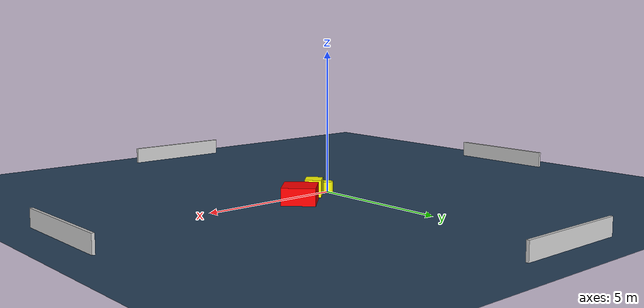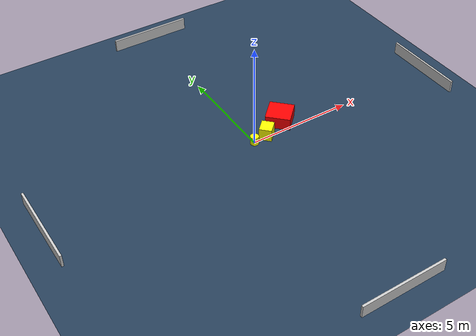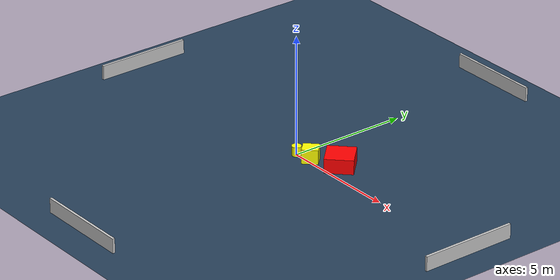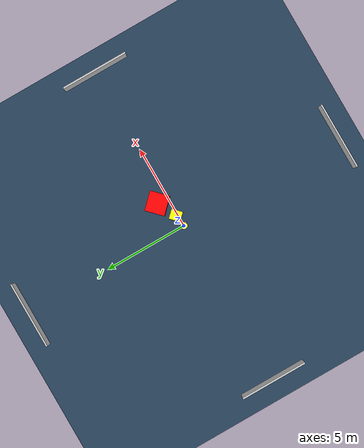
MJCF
<?xml version="1.0" ?>
<mujoco model="generated_environment">
  <option timestep="0.01" integrator="RK4" cone="elliptic"/>
  <default>
    <geom density="1"/>
  </default>
  <asset>
    <texture builtin="gradient" height="3072" name="skybox" rgb1="0.3 0.5 0.7" rgb2="0 0 0" type="skybox" width="512"/>
    <texture builtin="checker" height="300" name="groundplane" rgb1="0.2 0.3 0.4" rgb2="0.1 0.2 0.3" type="2d" width="300"/>
    <material name="groundplane" reflectance="0.2" texrepeat="5 5" texture="groundplane"/>
  </asset>
  <worldbody>
    <light dir="0 0 -1" directional="true" pos="0 0 1.5"/>
    <geom condim="3" friction="0.5 0.005 0.001" material="groundplane" name="floor" pos="0 0 0" size="0 0 0.05" type="plane"/>
    <body name="walls">
      <geom name="wall_1" condim="4" pos="-10.0 0.0 0.3" rgba="0.800000011920929 0.800000011920929 0.800000011920929 1.0" size="0.05 2.0 0.3" type="box"/>
      <geom name="wall_2" condim="4" pos="10.0 0.0 0.3" rgba="0.800000011920929 0.800000011920929 0.800000011920929 1.0" size="0.05 2.0 0.3" type="box"/>
      <geom name="wall_3" condim="4" pos="0.0 -10.0 0.3" rgba="0.800000011920929 0.800000011920929 0.800000011920929 1.0" size="2.0 0.05 0.3" type="box"/>
      <geom name="wall_4" condim="4" pos="0.0 10.0 0.3" rgba="0.800000011920929 0.800000011920929 0.800000011920929 1.0" size="2.0 0.05 0.3" type="box"/>
    </body>
    <body name="robot">
      <joint name="joint_x" type="slide" pos="0 0 0" axis="1 0 0"/>
      <joint name="joint_y" type="slide" pos="0 0 0" axis="0 1 0"/>
      <geom name="robot" type="cylinder" pos="0.0 0.0 0.2" size="0.2 0.2 0.0" mass="5.0" friction="1.0 0.005 0.0001" condim="4" rgba="1.0 1.0 0.0 1.0"/>
    </body>
    <body name="obstacle_1_movable">
      <geom name="obstacle_1_movable" condim="4" pos="0.7267286502729794 0.10949117088721833 0.3" euler="0 0 44.030171489911154" friction="0.0 0.005 0.001" rgba="1.0 1.0 0.0 1.0" size="0.32898962184446356 0.29228061411891926 0.3" type="box" mass="0.1"/>
      <joint type="free"/>
    </body>
    <body name="obstacle_2_static">
      <geom name="obstacle_2_static" condim="4" pos="1.8294855094548712 0.6759273891107817 0.3" euler="0 0 134.6654071879501" friction="0.0 0.005 0.001" rgba="1.0 0.0 0.0 1.0" size="0.5843926317293902 0.5761262076189835 0.3" type="box"/>
    </body>
  </worldbody>
  <actuator>
    <motor name="actuator_x" joint="joint_x" gear="1" ctrlrange="-1 1"/>
    <motor name="actuator_y" joint="joint_y" gear="1" ctrlrange="-1 1"/>
  </actuator>
</mujoco>
